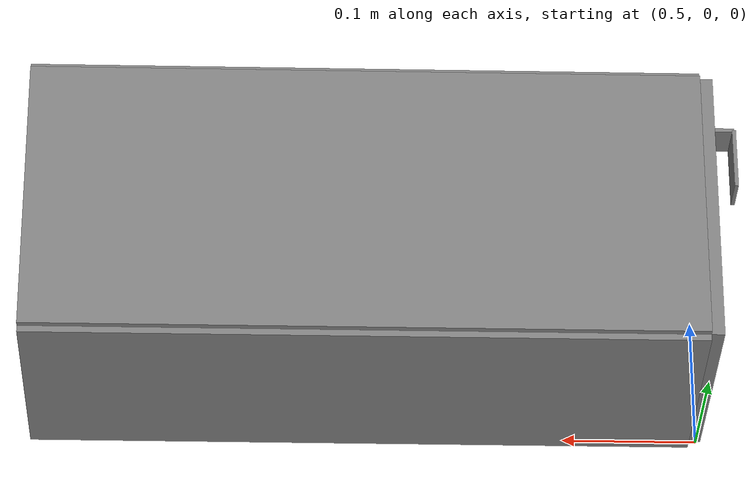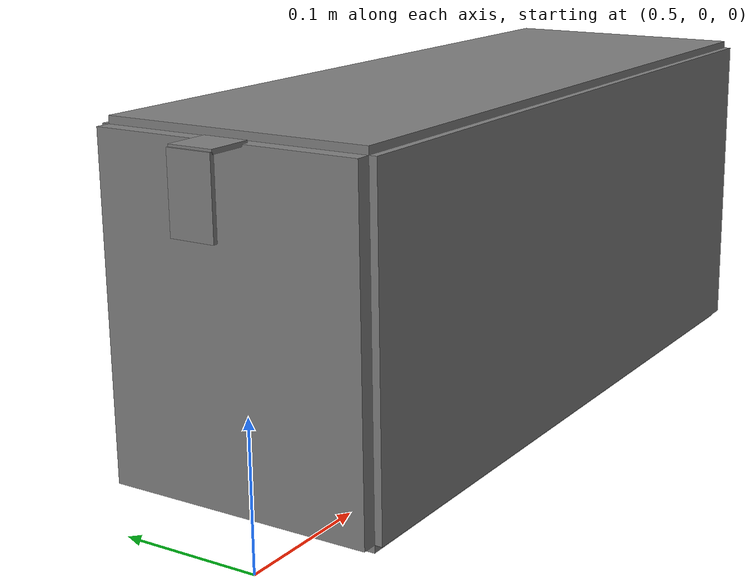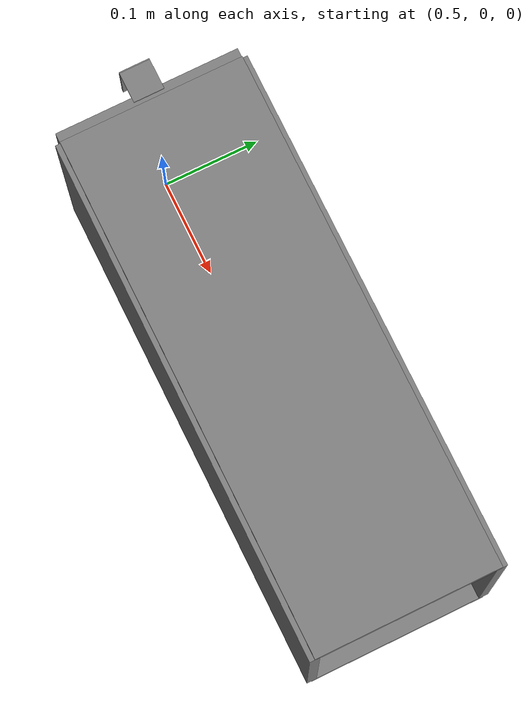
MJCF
<mujoco model="robot">
    <compiler angle="radian" autolimits="true" />

    <default>
        <default class="mailbox_hinge">
            <joint armature="0.000001" damping="0.01" frictionloss="0.01"
                limited="true"
                pos="0 0 0"
                range="-3.14 0" type="hinge" solimplimit="0.99 0.999 0.001" />
        </default>
        <default class="mailbox_collision">
            <geom contype="1" conaffinity="0" rgba="0.5 0.5 0.5 1" solimp="0.99 0.999 0.0005" />
        </default>

    </default>
    <worldbody>
        <body name="mailbox_body" pos="0.75 0 0" euler="0 0 1.57">
            <geom size="0.09 0.255 0.005" pos="0 0 0.0443099" type="box" class="mailbox_collision" />
            <geom size="0.005 0.255 0.11" pos="0.09 0 0.15431" type="box" class="mailbox_collision" />
            <geom size="0.005 0.255 0.11" pos="-0.09 0 0.15431" type="box" class="mailbox_collision" />
            <geom size="0.09 0.255 0.005" pos="0 0 0.26431" type="box" class="mailbox_collision" />
            <body name="mailbox_front" pos="0 0.26 0.0443099" quat="0.707107 0 0.707107 0"
                gravcomp="0">
                <inertial pos="-0.12 0 0" mass="0.1" diaginertia="0.00161 0.00161 0.00161" />
                <joint name="mailbox_hinge" class="mailbox_hinge" />
                <geom size="0.11 0.005 0.09" pos="-0.11 0 0" type="box" class="mailbox_collision" />
                <geom
                    size="0.015 0.0015 0.015" pos="-0.22 0.015 0" quat="0.707107 0 0 0.707107"
                    type="box" class="mailbox_collision" />
                <geom size="0.025 0.0015 0.015" pos="-0.195 0.03 0" type="box"
                    class="mailbox_collision" />
            </body>
        </body>
    </worldbody>
</mujoco>
